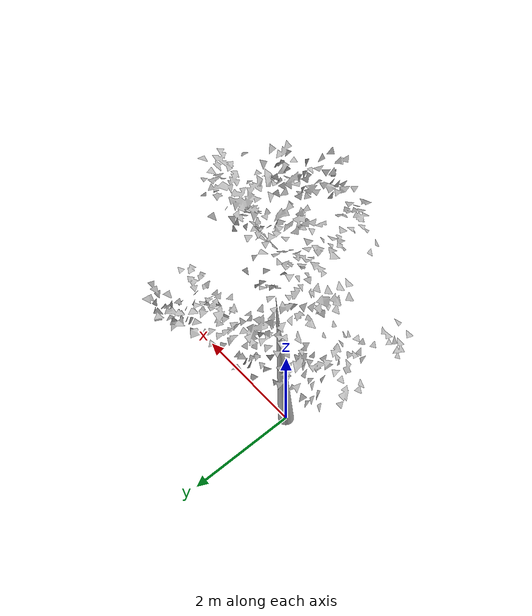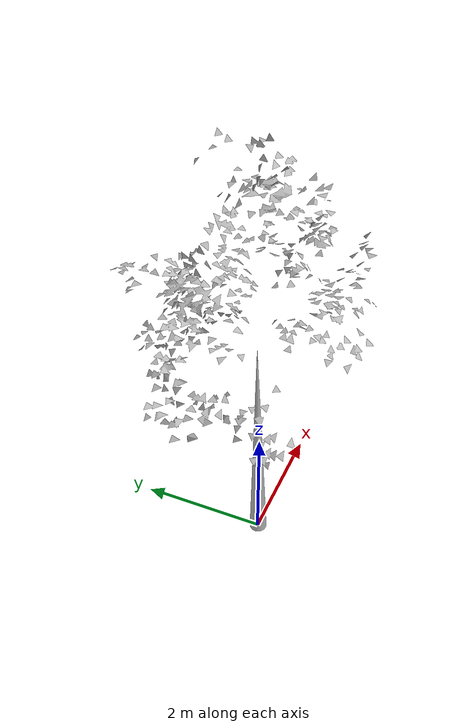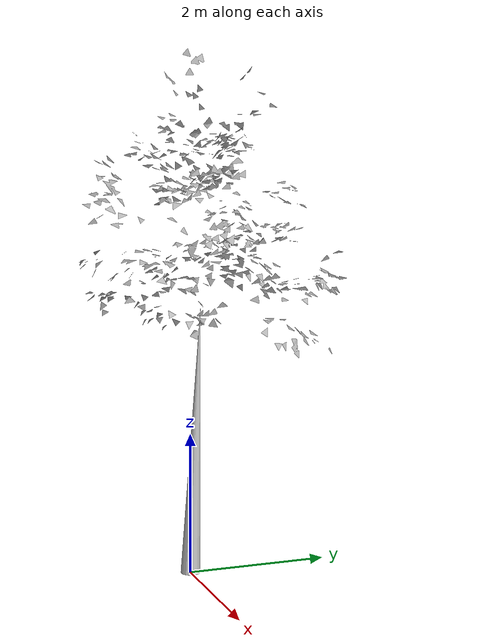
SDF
<?xml version="1.0" ?>
<sdf version="1.5">
  <model name="poplar">
    <static>true</static>
    <link name="poplar_link">
      <collision name="collision">
        <geometry>
          <mesh optimization="convex_hull">
            <uri>model://poplar/meshes/poplar.stl</uri>
          </mesh>
        </geometry>
      </collision>
      <visual name="visual">
        <geometry>
          <mesh>
            <uri>model://poplar/meshes/poplar.dae</uri>
          </mesh>
        </geometry>
      </visual>
    </link>
  </model>
</sdf>
